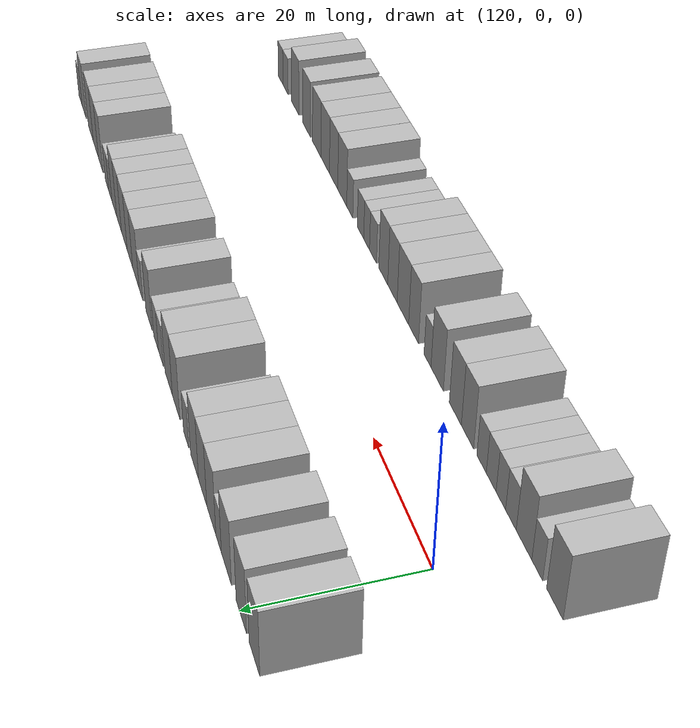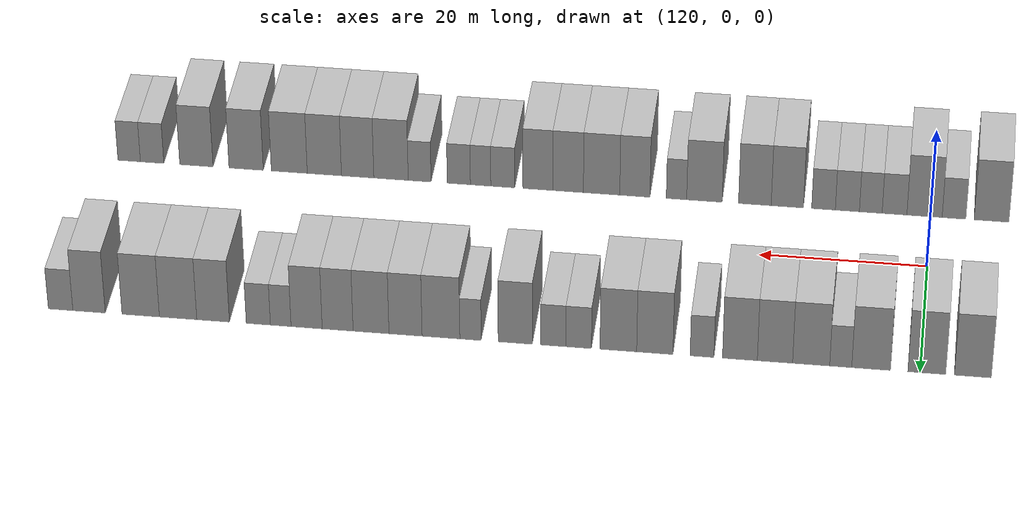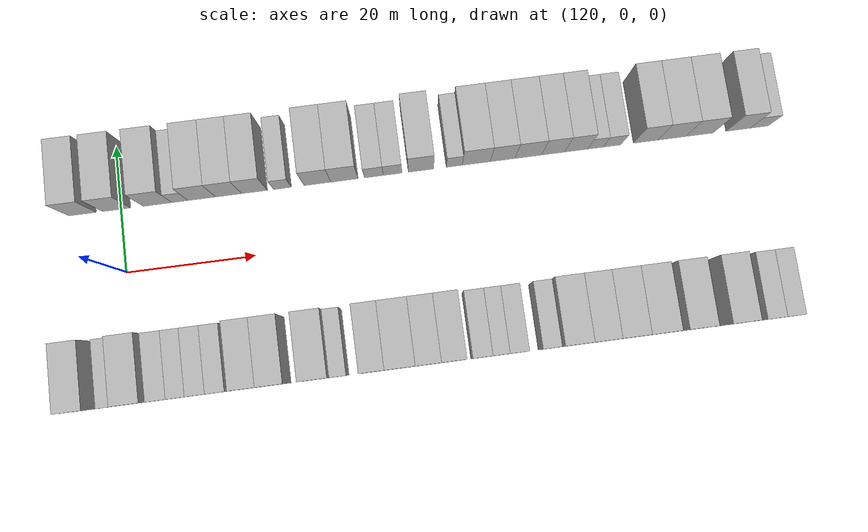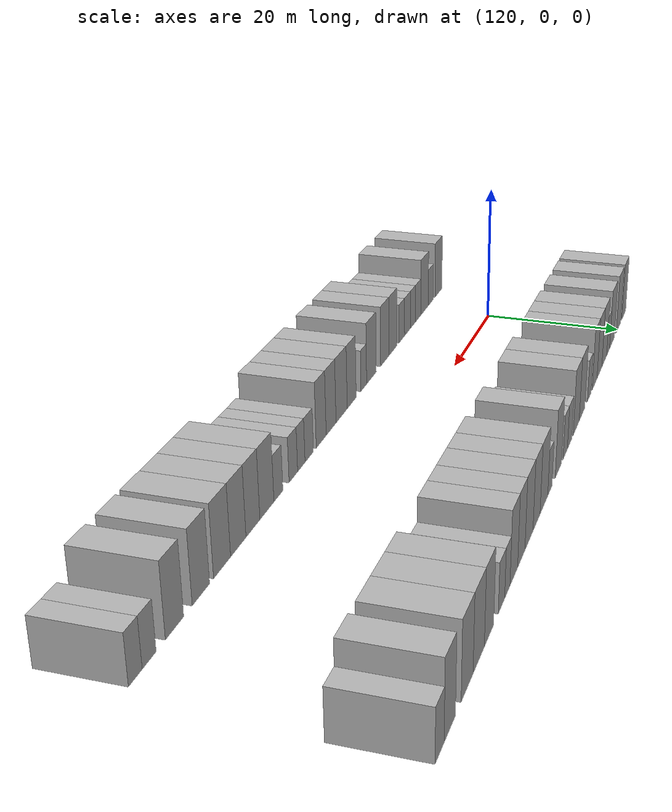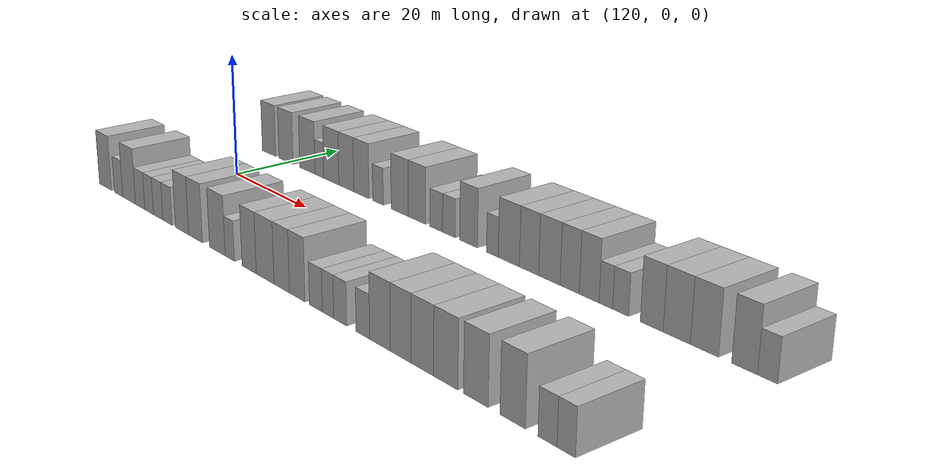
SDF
<sdf version="1.6">
 <world name="default">
  <model name="building_26">
   <static>1</static>
   <pose>113.9571 15.0000 0 0.000000 0.000000 1.570796</pose>
   <link name="link">
    <pose>0 0 4.50 0 0 0</pose>
    <collision name="collision"><geometry><box><size>10.0000 4.2290 9.0000</size></box></geometry></collision>
    <visual name="visual">
     <cast_shadows>0</cast_shadows>
     <geometry><box><size>10.0000 4.2290 9.0000</size></box></geometry>
     <material>
      <script>
       <uri>model://HANNAS_wall/materials/scripts</uri>
       <uri>model://HANNAS_wall/materials/textures</uri>
       <name>vrc/HANNAS_wall</name>
      </script>
     </material>
    </visual>
   </link>
  </model>
  <model name="building_27">
   <static>1</static>
   <pose>119.2484 15.0000 0 0.000000 0.000000 1.570796</pose>
   <link name="link">
    <pose>0 0 4.50 0 0 0</pose>
    <collision name="collision"><geometry><box><size>10.0000 4.3536 9.0000</size></box></geometry></collision>
    <visual name="visual">
     <cast_shadows>0</cast_shadows>
     <geometry><box><size>10.0000 4.3536 9.0000</size></box></geometry>
     <material>
      <script>
       <uri>model://HANNAS_wall/materials/scripts</uri>
       <uri>model://HANNAS_wall/materials/textures</uri>
       <name>vrc/HANNAS_wall</name>
      </script>
     </material>
    </visual>
   </link>
  </model>
  <model name="building_28">
   <static>1</static>
   <pose>125.6580 15.0000 0 0.000000 0.000000 1.570796</pose>
   <link name="link">
    <pose>0 0 4.50 0 0 0</pose>
    <collision name="collision"><geometry><box><size>10.0000 4.4658 9.0000</size></box></geometry></collision>
    <visual name="visual">
     <cast_shadows>0</cast_shadows>
     <geometry><box><size>10.0000 4.4658 9.0000</size></box></geometry>
     <material>
      <script>
       <uri>model://HANNAS_wall/materials/scripts</uri>
       <uri>model://HANNAS_wall/materials/textures</uri>
       <name>vrc/HANNAS_wall</name>
      </script>
     </material>
    </visual>
   </link>
  </model>
  <model name="building_29">
   <static>1</static>
   <pose>129.1652 15.0000 0 0.000000 0.000000 1.570796</pose>
   <link name="link">
    <pose>0 0 3.00 0 0 0</pose>
    <collision name="collision"><geometry><box><size>10.0000 2.5487 6.0000</size></box></geometry></collision>
    <visual name="visual">
     <cast_shadows>0</cast_shadows>
     <geometry><box><size>10.0000 2.5487 6.0000</size></box></geometry>
     <material>
      <script>
       <uri>model://HANNAS_wall/materials/scripts</uri>
       <uri>model://HANNAS_wall/materials/textures</uri>
       <name>vrc/HANNAS_wall</name>
      </script>
     </material>
    </visual>
   </link>
  </model>
  <model name="building_30">
   <static>1</static>
   <pose>132.5843 15.0000 0 0.000000 0.000000 1.570796</pose>
   <link name="link">
    <pose>0 0 4.50 0 0 0</pose>
    <collision name="collision"><geometry><box><size>10.0000 4.2895 9.0000</size></box></geometry></collision>
    <visual name="visual">
     <cast_shadows>0</cast_shadows>
     <geometry><box><size>10.0000 4.2895 9.0000</size></box></geometry>
     <material>
      <script>
       <uri>model://HANNAS_wall/materials/scripts</uri>
       <uri>model://HANNAS_wall/materials/textures</uri>
       <name>vrc/HANNAS_wall</name>
      </script>
     </material>
    </visual>
   </link>
  </model>
  <model name="building_31">
   <static>1</static>
   <pose>136.7707 15.0000 0 0.000000 0.000000 1.570796</pose>
   <link name="link">
    <pose>0 0 4.50 0 0 0</pose>
    <collision name="collision"><geometry><box><size>10.0000 4.0835 9.0000</size></box></geometry></collision>
    <visual name="visual">
     <cast_shadows>0</cast_shadows>
     <geometry><box><size>10.0000 4.0835 9.0000</size></box></geometry>
     <material>
      <script>
       <uri>model://HANNAS_wall/materials/scripts</uri>
       <uri>model://HANNAS_wall/materials/textures</uri>
       <name>vrc/HANNAS_wall</name>
      </script>
     </material>
    </visual>
   </link>
  </model>
  <model name="building_32">
   <static>1</static>
   <pose>140.8305 15.0000 0 0.000000 0.000000 1.570796</pose>
   <link name="link">
    <pose>0 0 4.50 0 0 0</pose>
    <collision name="collision"><geometry><box><size>10.0000 4.0360 9.0000</size></box></geometry></collision>
    <visual name="visual">
     <cast_shadows>0</cast_shadows>
     <geometry><box><size>10.0000 4.0360 9.0000</size></box></geometry>
     <material>
      <script>
       <uri>model://HANNAS_wall/materials/scripts</uri>
       <uri>model://HANNAS_wall/materials/textures</uri>
       <name>vrc/HANNAS_wall</name>
      </script>
     </material>
    </visual>
   </link>
  </model>
  <model name="building_33">
   <static>1</static>
   <pose>145.2298 15.0000 0 0.000000 0.000000 1.570796</pose>
   <link name="link">
    <pose>0 0 3.00 0 0 0</pose>
    <collision name="collision"><geometry><box><size>10.0000 2.7626 6.0000</size></box></geometry></collision>
    <visual name="visual">
     <cast_shadows>0</cast_shadows>
     <geometry><box><size>10.0000 2.7626 6.0000</size></box></geometry>
     <material>
      <script>
       <uri>model://HANNAS_wall/materials/scripts</uri>
       <uri>model://HANNAS_wall/materials/textures</uri>
       <name>vrc/HANNAS_wall</name>
      </script>
     </material>
    </visual>
   </link>
  </model>
  <model name="building_34">
   <static>1</static>
   <pose>150.7208 15.0000 0 0.000000 0.000000 1.570796</pose>
   <link name="link">
    <pose>0 0 4.50 0 0 0</pose>
    <collision name="collision"><geometry><box><size>10.0000 4.2193 9.0000</size></box></geometry></collision>
    <visual name="visual">
     <cast_shadows>0</cast_shadows>
     <geometry><box><size>10.0000 4.2193 9.0000</size></box></geometry>
     <material>
      <script>
       <uri>model://HANNAS_wall/materials/scripts</uri>
       <uri>model://HANNAS_wall/materials/textures</uri>
       <name>vrc/HANNAS_wall</name>
      </script>
     </material>
    </visual>
   </link>
  </model>
  <model name="building_35">
   <static>1</static>
   <pose>154.9682 15.0000 0 0.000000 0.000000 1.570796</pose>
   <link name="link">
    <pose>0 0 4.50 0 0 0</pose>
    <collision name="collision"><geometry><box><size>10.0000 4.2756 9.0000</size></box></geometry></collision>
    <visual name="visual">
     <cast_shadows>0</cast_shadows>
     <geometry><box><size>10.0000 4.2756 9.0000</size></box></geometry>
     <material>
      <script>
       <uri>model://HANNAS_wall/materials/scripts</uri>
       <uri>model://HANNAS_wall/materials/textures</uri>
       <name>vrc/HANNAS_wall</name>
      </script>
     </material>
    </visual>
   </link>
  </model>
  <model name="building_36">
   <static>1</static>
   <pose>159.6041 15.0000 0 0.000000 0.000000 1.570796</pose>
   <link name="link">
    <pose>0 0 3.00 0 0 0</pose>
    <collision name="collision"><geometry><box><size>10.0000 2.9961 6.0000</size></box></geometry></collision>
    <visual name="visual">
     <cast_shadows>0</cast_shadows>
     <geometry><box><size>10.0000 2.9961 6.0000</size></box></geometry>
     <material>
      <script>
       <uri>model://HANNAS_wall/materials/scripts</uri>
       <uri>model://HANNAS_wall/materials/textures</uri>
       <name>vrc/HANNAS_wall</name>
      </script>
     </material>
    </visual>
   </link>
  </model>
  <model name="building_37">
   <static>1</static>
   <pose>162.5634 15.0000 0 0.000000 0.000000 1.570796</pose>
   <link name="link">
    <pose>0 0 3.00 0 0 0</pose>
    <collision name="collision"><geometry><box><size>10.0000 2.9226 6.0000</size></box></geometry></collision>
    <visual name="visual">
     <cast_shadows>0</cast_shadows>
     <geometry><box><size>10.0000 2.9226 6.0000</size></box></geometry>
     <material>
      <script>
       <uri>model://HANNAS_wall/materials/scripts</uri>
       <uri>model://HANNAS_wall/materials/textures</uri>
       <name>vrc/HANNAS_wall</name>
      </script>
     </material>
    </visual>
   </link>
  </model>
  <model name="building_38">
   <static>1</static>
   <pose>167.0217 15.0000 0 0.000000 0.000000 1.570796</pose>
   <link name="link">
    <pose>0 0 4.50 0 0 0</pose>
    <collision name="collision"><geometry><box><size>10.0000 3.9940 9.0000</size></box></geometry></collision>
    <visual name="visual">
     <cast_shadows>0</cast_shadows>
     <geometry><box><size>10.0000 3.9940 9.0000</size></box></geometry>
     <material>
      <script>
       <uri>model://HANNAS_wall/materials/scripts</uri>
       <uri>model://HANNAS_wall/materials/textures</uri>
       <name>vrc/HANNAS_wall</name>
      </script>
     </material>
    </visual>
   </link>
  </model>
  <model name="building_39">
   <static>1</static>
   <pose>172.2708 15.0000 0 0.000000 0.000000 1.570796</pose>
   <link name="link">
    <pose>0 0 3.00 0 0 0</pose>
    <collision name="collision"><geometry><box><size>10.0000 2.5043 6.0000</size></box></geometry></collision>
    <visual name="visual">
     <cast_shadows>0</cast_shadows>
     <geometry><box><size>10.0000 2.5043 6.0000</size></box></geometry>
     <material>
      <script>
       <uri>model://HANNAS_wall/materials/scripts</uri>
       <uri>model://HANNAS_wall/materials/textures</uri>
       <name>vrc/HANNAS_wall</name>
      </script>
     </material>
    </visual>
   </link>
  </model>
  <model name="building_40">
   <static>1</static>
   <pose>175.7442 15.0000 0 0.000000 0.000000 1.570796</pose>
   <link name="link">
    <pose>0 0 4.50 0 0 0</pose>
    <collision name="collision"><geometry><box><size>10.0000 4.4425 9.0000</size></box></geometry></collision>
    <visual name="visual">
     <cast_shadows>0</cast_shadows>
     <geometry><box><size>10.0000 4.4425 9.0000</size></box></geometry>
     <material>
      <script>
       <uri>model://HANNAS_wall/materials/scripts</uri>
       <uri>model://HANNAS_wall/materials/textures</uri>
       <name>vrc/HANNAS_wall</name>
      </script>
     </material>
    </visual>
   </link>
  </model>
  <model name="building_41">
   <static>1</static>
   <pose>179.9159 15.0000 0 0.000000 0.000000 1.570796</pose>
   <link name="link">
    <pose>0 0 4.50 0 0 0</pose>
    <collision name="collision"><geometry><box><size>10.0000 3.9008 9.0000</size></box></geometry></collision>
    <visual name="visual">
     <cast_shadows>0</cast_shadows>
     <geometry><box><size>10.0000 3.9008 9.0000</size></box></geometry>
     <material>
      <script>
       <uri>model://HANNAS_wall/materials/scripts</uri>
       <uri>model://HANNAS_wall/materials/textures</uri>
       <name>vrc/HANNAS_wall</name>
      </script>
     </material>
    </visual>
   </link>
  </model>
  <model name="building_42">
   <static>1</static>
   <pose>183.9827 15.0000 0 0.000000 0.000000 1.570796</pose>
   <link name="link">
    <pose>0 0 4.50 0 0 0</pose>
    <collision name="collision"><geometry><box><size>10.0000 4.2328 9.0000</size></box></geometry></collision>
    <visual name="visual">
     <cast_shadows>0</cast_shadows>
     <geometry><box><size>10.0000 4.2328 9.0000</size></box></geometry>
     <material>
      <script>
       <uri>model://HANNAS_wall/materials/scripts</uri>
       <uri>model://HANNAS_wall/materials/textures</uri>
       <name>vrc/HANNAS_wall</name>
      </script>
     </material>
    </visual>
   </link>
  </model>
  <model name="building_43">
   <static>1</static>
   <pose>187.9259 15.0000 0 0.000000 0.000000 1.570796</pose>
   <link name="link">
    <pose>0 0 4.50 0 0 0</pose>
    <collision name="collision"><geometry><box><size>10.0000 3.6535 9.0000</size></box></geometry></collision>
    <visual name="visual">
     <cast_shadows>0</cast_shadows>
     <geometry><box><size>10.0000 3.6535 9.0000</size></box></geometry>
     <material>
      <script>
       <uri>model://HANNAS_wall/materials/scripts</uri>
       <uri>model://HANNAS_wall/materials/textures</uri>
       <name>vrc/HANNAS_wall</name>
      </script>
     </material>
    </visual>
   </link>
  </model>
  <model name="building_44">
   <static>1</static>
   <pose>191.5947 15.0000 0 0.000000 0.000000 1.570796</pose>
   <link name="link">
    <pose>0 0 4.50 0 0 0</pose>
    <collision name="collision"><geometry><box><size>10.0000 3.6842 9.0000</size></box></geometry></collision>
    <visual name="visual">
     <cast_shadows>0</cast_shadows>
     <geometry><box><size>10.0000 3.6842 9.0000</size></box></geometry>
     <material>
      <script>
       <uri>model://HANNAS_wall/materials/scripts</uri>
       <uri>model://HANNAS_wall/materials/textures</uri>
       <name>vrc/HANNAS_wall</name>
      </script>
     </material>
    </visual>
   </link>
  </model>
  <model name="building_45">
   <static>1</static>
   <pose>194.6603 15.0000 0 0.000000 0.000000 1.570796</pose>
   <link name="link">
    <pose>0 0 3.00 0 0 0</pose>
    <collision name="collision"><geometry><box><size>10.0000 2.4469 6.0000</size></box></geometry></collision>
    <visual name="visual">
     <cast_shadows>0</cast_shadows>
     <geometry><box><size>10.0000 2.4469 6.0000</size></box></geometry>
     <material>
      <script>
       <uri>model://HANNAS_wall/materials/scripts</uri>
       <uri>model://HANNAS_wall/materials/textures</uri>
       <name>vrc/HANNAS_wall</name>
      </script>
     </material>
    </visual>
   </link>
  </model>
  <model name="building_46">
   <static>1</static>
   <pose>197.3124 15.0000 0 0.000000 0.000000 1.570796</pose>
   <link name="link">
    <pose>0 0 3.00 0 0 0</pose>
    <collision name="collision"><geometry><box><size>10.0000 2.8573 6.0000</size></box></geometry></collision>
    <visual name="visual">
     <cast_shadows>0</cast_shadows>
     <geometry><box><size>10.0000 2.8573 6.0000</size></box></geometry>
     <material>
      <script>
       <uri>model://HANNAS_wall/materials/scripts</uri>
       <uri>model://HANNAS_wall/materials/textures</uri>
       <name>vrc/HANNAS_wall</name>
      </script>
     </material>
    </visual>
   </link>
  </model>
  <model name="building_47">
   <static>1</static>
   <pose>202.6811 15.0000 0 0.000000 0.000000 1.570796</pose>
   <link name="link">
    <pose>0 0 4.50 0 0 0</pose>
    <collision name="collision"><geometry><box><size>10.0000 3.8801 9.0000</size></box></geometry></collision>
    <visual name="visual">
     <cast_shadows>0</cast_shadows>
     <geometry><box><size>10.0000 3.8801 9.0000</size></box></geometry>
     <material>
      <script>
       <uri>model://HANNAS_wall/materials/scripts</uri>
       <uri>model://HANNAS_wall/materials/textures</uri>
       <name>vrc/HANNAS_wall</name>
      </script>
     </material>
    </visual>
   </link>
  </model>
  <model name="building_48">
   <static>1</static>
   <pose>206.8475 15.0000 0 0.000000 0.000000 1.570796</pose>
   <link name="link">
    <pose>0 0 4.50 0 0 0</pose>
    <collision name="collision"><geometry><box><size>10.0000 4.4528 9.0000</size></box></geometry></collision>
    <visual name="visual">
     <cast_shadows>0</cast_shadows>
     <geometry><box><size>10.0000 4.4528 9.0000</size></box></geometry>
     <material>
      <script>
       <uri>model://HANNAS_wall/materials/scripts</uri>
       <uri>model://HANNAS_wall/materials/textures</uri>
       <name>vrc/HANNAS_wall</name>
      </script>
     </material>
    </visual>
   </link>
  </model>
  <model name="building_49">
   <static>1</static>
   <pose>211.3017 15.0000 0 0.000000 0.000000 1.570796</pose>
   <link name="link">
    <pose>0 0 4.50 0 0 0</pose>
    <collision name="collision"><geometry><box><size>10.0000 4.4556 9.0000</size></box></geometry></collision>
    <visual name="visual">
     <cast_shadows>0</cast_shadows>
     <geometry><box><size>10.0000 4.4556 9.0000</size></box></geometry>
     <material>
      <script>
       <uri>model://HANNAS_wall/materials/scripts</uri>
       <uri>model://HANNAS_wall/materials/textures</uri>
       <name>vrc/HANNAS_wall</name>
      </script>
     </material>
    </visual>
   </link>
  </model>
  <model name="building_50">
   <static>1</static>
   <pose>217.4664 15.0000 0 0.000000 0.000000 1.570796</pose>
   <link name="link">
    <pose>0 0 4.50 0 0 0</pose>
    <collision name="collision"><geometry><box><size>10.0000 3.8738 9.0000</size></box></geometry></collision>
    <visual name="visual">
     <cast_shadows>0</cast_shadows>
     <geometry><box><size>10.0000 3.8738 9.0000</size></box></geometry>
     <material>
      <script>
       <uri>model://HANNAS_wall/materials/scripts</uri>
       <uri>model://HANNAS_wall/materials/textures</uri>
       <name>vrc/HANNAS_wall</name>
      </script>
     </material>
    </visual>
   </link>
  </model>
  <model name="building_51">
   <static>1</static>
   <pose>220.8694 15.0000 0 0.000000 0.000000 1.570796</pose>
   <link name="link">
    <pose>0 0 3.00 0 0 0</pose>
    <collision name="collision"><geometry><box><size>10.0000 2.9322 6.0000</size></box></geometry></collision>
    <visual name="visual">
     <cast_shadows>0</cast_shadows>
     <geometry><box><size>10.0000 2.9322 6.0000</size></box></geometry>
     <material>
      <script>
       <uri>model://HANNAS_wall/materials/scripts</uri>
       <uri>model://HANNAS_wall/materials/textures</uri>
       <name>vrc/HANNAS_wall</name>
      </script>
     </material>
    </visual>
   </link>
  </model>
  <model name="building_79">
   <static>1</static>
   <pose>112.5888 -15.0000 0 0.000000 0.000000 1.570796</pose>
   <link name="link">
    <pose>0 0 4.50 0 0 0</pose>
    <collision name="collision"><geometry><box><size>10.0000 4.1916 9.0000</size></box></geometry></collision>
    <visual name="visual">
     <cast_shadows>0</cast_shadows>
     <geometry><box><size>10.0000 4.1916 9.0000</size></box></geometry>
     <material>
      <script>
       <uri>model://HANNAS_wall/materials/scripts</uri>
       <uri>model://HANNAS_wall/materials/textures</uri>
       <name>vrc/HANNAS_wall</name>
      </script>
     </material>
    </visual>
   </link>
  </model>
  <model name="building_80">
   <static>1</static>
   <pose>117.1200 -15.0000 0 0.000000 0.000000 1.570796</pose>
   <link name="link">
    <pose>0 0 3.00 0 0 0</pose>
    <collision name="collision"><geometry><box><size>10.0000 2.8707 6.0000</size></box></geometry></collision>
    <visual name="visual">
     <cast_shadows>0</cast_shadows>
     <geometry><box><size>10.0000 2.8707 6.0000</size></box></geometry>
     <material>
      <script>
       <uri>model://HANNAS_wall/materials/scripts</uri>
       <uri>model://HANNAS_wall/materials/textures</uri>
       <name>vrc/HANNAS_wall</name>
      </script>
     </material>
    </visual>
   </link>
  </model>
  <model name="building_81">
   <static>1</static>
   <pose>120.6874 -15.0000 0 0.000000 0.000000 1.570796</pose>
   <link name="link">
    <pose>0 0 4.50 0 0 0</pose>
    <collision name="collision"><geometry><box><size>10.0000 4.2641 9.0000</size></box></geometry></collision>
    <visual name="visual">
     <cast_shadows>0</cast_shadows>
     <geometry><box><size>10.0000 4.2641 9.0000</size></box></geometry>
     <material>
      <script>
       <uri>model://HANNAS_wall/materials/scripts</uri>
       <uri>model://HANNAS_wall/materials/textures</uri>
       <name>vrc/HANNAS_wall</name>
      </script>
     </material>
    </visual>
   </link>
  </model>
  <model name="building_82">
   <static>1</static>
   <pose>124.3186 -15.0000 0 0.000000 0.000000 1.570796</pose>
   <link name="link">
    <pose>0 0 3.00 0 0 0</pose>
    <collision name="collision"><geometry><box><size>10.0000 2.9982 6.0000</size></box></geometry></collision>
    <visual name="visual">
     <cast_shadows>0</cast_shadows>
     <geometry><box><size>10.0000 2.9982 6.0000</size></box></geometry>
     <material>
      <script>
       <uri>model://HANNAS_wall/materials/scripts</uri>
       <uri>model://HANNAS_wall/materials/textures</uri>
       <name>vrc/HANNAS_wall</name>
      </script>
     </material>
    </visual>
   </link>
  </model>
  <model name="building_83">
   <static>1</static>
   <pose>127.1950 -15.0000 0 0.000000 0.000000 1.570796</pose>
   <link name="link">
    <pose>0 0 3.00 0 0 0</pose>
    <collision name="collision"><geometry><box><size>10.0000 2.7545 6.0000</size></box></geometry></collision>
    <visual name="visual">
     <cast_shadows>0</cast_shadows>
     <geometry><box><size>10.0000 2.7545 6.0000</size></box></geometry>
     <material>
      <script>
       <uri>model://HANNAS_wall/materials/scripts</uri>
       <uri>model://HANNAS_wall/materials/textures</uri>
       <name>vrc/HANNAS_wall</name>
      </script>
     </material>
    </visual>
   </link>
  </model>
  <model name="building_84">
   <static>1</static>
   <pose>130.0331 -15.0000 0 0.000000 0.000000 1.570796</pose>
   <link name="link">
    <pose>0 0 3.00 0 0 0</pose>
    <collision name="collision"><geometry><box><size>10.0000 2.9217 6.0000</size></box></geometry></collision>
    <visual name="visual">
     <cast_shadows>0</cast_shadows>
     <geometry><box><size>10.0000 2.9217 6.0000</size></box></geometry>
     <material>
      <script>
       <uri>model://HANNAS_wall/materials/scripts</uri>
       <uri>model://HANNAS_wall/materials/textures</uri>
       <name>vrc/HANNAS_wall</name>
      </script>
     </material>
    </visual>
   </link>
  </model>
  <model name="building_85">
   <static>1</static>
   <pose>132.9336 -15.0000 0 0.000000 0.000000 1.570796</pose>
   <link name="link">
    <pose>0 0 3.00 0 0 0</pose>
    <collision name="collision"><geometry><box><size>10.0000 2.8793 6.0000</size></box></geometry></collision>
    <visual name="visual">
     <cast_shadows>0</cast_shadows>
     <geometry><box><size>10.0000 2.8793 6.0000</size></box></geometry>
     <material>
      <script>
       <uri>model://HANNAS_wall/materials/scripts</uri>
       <uri>model://HANNAS_wall/materials/textures</uri>
       <name>vrc/HANNAS_wall</name>
      </script>
     </material>
    </visual>
   </link>
  </model>
  <model name="building_86">
   <static>1</static>
   <pose>137.3372 -15.0000 0 0.000000 0.000000 1.570796</pose>
   <link name="link">
    <pose>0 0 4.50 0 0 0</pose>
    <collision name="collision"><geometry><box><size>10.0000 3.9281 9.0000</size></box></geometry></collision>
    <visual name="visual">
     <cast_shadows>0</cast_shadows>
     <geometry><box><size>10.0000 3.9281 9.0000</size></box></geometry>
     <material>
      <script>
       <uri>model://HANNAS_wall/materials/scripts</uri>
       <uri>model://HANNAS_wall/materials/textures</uri>
       <name>vrc/HANNAS_wall</name>
      </script>
     </material>
    </visual>
   </link>
  </model>
  <model name="building_87">
   <static>1</static>
   <pose>141.2907 -15.0000 0 0.000000 0.000000 1.570796</pose>
   <link name="link">
    <pose>0 0 4.50 0 0 0</pose>
    <collision name="collision"><geometry><box><size>10.0000 3.9787 9.0000</size></box></geometry></collision>
    <visual name="visual">
     <cast_shadows>0</cast_shadows>
     <geometry><box><size>10.0000 3.9787 9.0000</size></box></geometry>
     <material>
      <script>
       <uri>model://HANNAS_wall/materials/scripts</uri>
       <uri>model://HANNAS_wall/materials/textures</uri>
       <name>vrc/HANNAS_wall</name>
      </script>
     </material>
    </visual>
   </link>
  </model>
  <model name="building_88">
   <static>1</static>
   <pose>147.4485 -15.0000 0 0.000000 0.000000 1.570796</pose>
   <link name="link">
    <pose>0 0 4.50 0 0 0</pose>
    <collision name="collision"><geometry><box><size>10.0000 4.3369 9.0000</size></box></geometry></collision>
    <visual name="visual">
     <cast_shadows>0</cast_shadows>
     <geometry><box><size>10.0000 4.3369 9.0000</size></box></geometry>
     <material>
      <script>
       <uri>model://HANNAS_wall/materials/scripts</uri>
       <uri>model://HANNAS_wall/materials/textures</uri>
       <name>vrc/HANNAS_wall</name>
      </script>
     </material>
    </visual>
   </link>
  </model>
  <model name="building_89">
   <static>1</static>
   <pose>150.8624 -15.0000 0 0.000000 0.000000 1.570796</pose>
   <link name="link">
    <pose>0 0 3.00 0 0 0</pose>
    <collision name="collision"><geometry><box><size>10.0000 2.4909 6.0000</size></box></geometry></collision>
    <visual name="visual">
     <cast_shadows>0</cast_shadows>
     <geometry><box><size>10.0000 2.4909 6.0000</size></box></geometry>
     <material>
      <script>
       <uri>model://HANNAS_wall/materials/scripts</uri>
       <uri>model://HANNAS_wall/materials/textures</uri>
       <name>vrc/HANNAS_wall</name>
      </script>
     </material>
    </visual>
   </link>
  </model>
  <model name="building_90">
   <static>1</static>
   <pose>155.9580 -15.0000 0 0.000000 0.000000 1.570796</pose>
   <link name="link">
    <pose>0 0 4.50 0 0 0</pose>
    <collision name="collision"><geometry><box><size>10.0000 3.7003 9.0000</size></box></geometry></collision>
    <visual name="visual">
     <cast_shadows>0</cast_shadows>
     <geometry><box><size>10.0000 3.7003 9.0000</size></box></geometry>
     <material>
      <script>
       <uri>model://HANNAS_wall/materials/scripts</uri>
       <uri>model://HANNAS_wall/materials/textures</uri>
       <name>vrc/HANNAS_wall</name>
      </script>
     </material>
    </visual>
   </link>
  </model>
  <model name="building_91">
   <static>1</static>
   <pose>160.0416 -15.0000 0 0.000000 0.000000 1.570796</pose>
   <link name="link">
    <pose>0 0 4.50 0 0 0</pose>
    <collision name="collision"><geometry><box><size>10.0000 4.4669 9.0000</size></box></geometry></collision>
    <visual name="visual">
     <cast_shadows>0</cast_shadows>
     <geometry><box><size>10.0000 4.4669 9.0000</size></box></geometry>
     <material>
      <script>
       <uri>model://HANNAS_wall/materials/scripts</uri>
       <uri>model://HANNAS_wall/materials/textures</uri>
       <name>vrc/HANNAS_wall</name>
      </script>
     </material>
    </visual>
   </link>
  </model>
  <model name="building_92">
   <static>1</static>
   <pose>164.1594 -15.0000 0 0.000000 0.000000 1.570796</pose>
   <link name="link">
    <pose>0 0 4.50 0 0 0</pose>
    <collision name="collision"><geometry><box><size>10.0000 3.7687 9.0000</size></box></geometry></collision>
    <visual name="visual">
     <cast_shadows>0</cast_shadows>
     <geometry><box><size>10.0000 3.7687 9.0000</size></box></geometry>
     <material>
      <script>
       <uri>model://HANNAS_wall/materials/scripts</uri>
       <uri>model://HANNAS_wall/materials/textures</uri>
       <name>vrc/HANNAS_wall</name>
      </script>
     </material>
    </visual>
   </link>
  </model>
  <model name="building_93">
   <static>1</static>
   <pose>167.8819 -15.0000 0 0.000000 0.000000 1.570796</pose>
   <link name="link">
    <pose>0 0 4.50 0 0 0</pose>
    <collision name="collision"><geometry><box><size>10.0000 3.6763 9.0000</size></box></geometry></collision>
    <visual name="visual">
     <cast_shadows>0</cast_shadows>
     <geometry><box><size>10.0000 3.6763 9.0000</size></box></geometry>
     <material>
      <script>
       <uri>model://HANNAS_wall/materials/scripts</uri>
       <uri>model://HANNAS_wall/materials/textures</uri>
       <name>vrc/HANNAS_wall</name>
      </script>
     </material>
    </visual>
   </link>
  </model>
  <model name="building_94">
   <static>1</static>
   <pose>172.2020 -15.0000 0 0.000000 0.000000 1.570796</pose>
   <link name="link">
    <pose>0 0 3.00 0 0 0</pose>
    <collision name="collision"><geometry><box><size>10.0000 2.9641 6.0000</size></box></geometry></collision>
    <visual name="visual">
     <cast_shadows>0</cast_shadows>
     <geometry><box><size>10.0000 2.9641 6.0000</size></box></geometry>
     <material>
      <script>
       <uri>model://HANNAS_wall/materials/scripts</uri>
       <uri>model://HANNAS_wall/materials/textures</uri>
       <name>vrc/HANNAS_wall</name>
      </script>
     </material>
    </visual>
   </link>
  </model>
  <model name="building_95">
   <static>1</static>
   <pose>174.9444 -15.0000 0 0.000000 0.000000 1.570796</pose>
   <link name="link">
    <pose>0 0 3.00 0 0 0</pose>
    <collision name="collision"><geometry><box><size>10.0000 2.5207 6.0000</size></box></geometry></collision>
    <visual name="visual">
     <cast_shadows>0</cast_shadows>
     <geometry><box><size>10.0000 2.5207 6.0000</size></box></geometry>
     <material>
      <script>
       <uri>model://HANNAS_wall/materials/scripts</uri>
       <uri>model://HANNAS_wall/materials/textures</uri>
       <name>vrc/HANNAS_wall</name>
      </script>
     </material>
    </visual>
   </link>
  </model>
  <model name="building_96">
   <static>1</static>
   <pose>177.6346 -15.0000 0 0.000000 0.000000 1.570796</pose>
   <link name="link">
    <pose>0 0 3.00 0 0 0</pose>
    <collision name="collision"><geometry><box><size>10.0000 2.8597 6.0000</size></box></geometry></collision>
    <visual name="visual">
     <cast_shadows>0</cast_shadows>
     <geometry><box><size>10.0000 2.8597 6.0000</size></box></geometry>
     <material>
      <script>
       <uri>model://HANNAS_wall/materials/scripts</uri>
       <uri>model://HANNAS_wall/materials/textures</uri>
       <name>vrc/HANNAS_wall</name>
      </script>
     </material>
    </visual>
   </link>
  </model>
  <model name="building_97">
   <static>1</static>
   <pose>182.4790 -15.0000 0 0.000000 0.000000 1.570796</pose>
   <link name="link">
    <pose>0 0 3.00 0 0 0</pose>
    <collision name="collision"><geometry><box><size>10.0000 2.8291 6.0000</size></box></geometry></collision>
    <visual name="visual">
     <cast_shadows>0</cast_shadows>
     <geometry><box><size>10.0000 2.8291 6.0000</size></box></geometry>
     <material>
      <script>
       <uri>model://HANNAS_wall/materials/scripts</uri>
       <uri>model://HANNAS_wall/materials/textures</uri>
       <name>vrc/HANNAS_wall</name>
      </script>
     </material>
    </visual>
   </link>
  </model>
  <model name="building_98">
   <static>1</static>
   <pose>186.0256 -15.0000 0 0.000000 0.000000 1.570796</pose>
   <link name="link">
    <pose>0 0 4.50 0 0 0</pose>
    <collision name="collision"><geometry><box><size>10.0000 4.2640 9.0000</size></box></geometry></collision>
    <visual name="visual">
     <cast_shadows>0</cast_shadows>
     <geometry><box><size>10.0000 4.2640 9.0000</size></box></geometry>
     <material>
      <script>
       <uri>model://HANNAS_wall/materials/scripts</uri>
       <uri>model://HANNAS_wall/materials/textures</uri>
       <name>vrc/HANNAS_wall</name>
      </script>
     </material>
    </visual>
   </link>
  </model>
  <model name="building_99">
   <static>1</static>
   <pose>190.1687 -15.0000 0 0.000000 0.000000 1.570796</pose>
   <link name="link">
    <pose>0 0 4.50 0 0 0</pose>
    <collision name="collision"><geometry><box><size>10.0000 4.0221 9.0000</size></box></geometry></collision>
    <visual name="visual">
     <cast_shadows>0</cast_shadows>
     <geometry><box><size>10.0000 4.0221 9.0000</size></box></geometry>
     <material>
      <script>
       <uri>model://HANNAS_wall/materials/scripts</uri>
       <uri>model://HANNAS_wall/materials/textures</uri>
       <name>vrc/HANNAS_wall</name>
      </script>
     </material>
    </visual>
   </link>
  </model>
  <model name="building_100">
   <static>1</static>
   <pose>194.3071 -15.0000 0 0.000000 0.000000 1.570796</pose>
   <link name="link">
    <pose>0 0 4.50 0 0 0</pose>
    <collision name="collision"><geometry><box><size>10.0000 4.2546 9.0000</size></box></geometry></collision>
    <visual name="visual">
     <cast_shadows>0</cast_shadows>
     <geometry><box><size>10.0000 4.2546 9.0000</size></box></geometry>
     <material>
      <script>
       <uri>model://HANNAS_wall/materials/scripts</uri>
       <uri>model://HANNAS_wall/materials/textures</uri>
       <name>vrc/HANNAS_wall</name>
      </script>
     </material>
    </visual>
   </link>
  </model>
  <model name="building_101">
   <static>1</static>
   <pose>198.6716 -15.0000 0 0.000000 0.000000 1.570796</pose>
   <link name="link">
    <pose>0 0 4.50 0 0 0</pose>
    <collision name="collision"><geometry><box><size>10.0000 4.4745 9.0000</size></box></geometry></collision>
    <visual name="visual">
     <cast_shadows>0</cast_shadows>
     <geometry><box><size>10.0000 4.4745 9.0000</size></box></geometry>
     <material>
      <script>
       <uri>model://HANNAS_wall/materials/scripts</uri>
       <uri>model://HANNAS_wall/materials/textures</uri>
       <name>vrc/HANNAS_wall</name>
      </script>
     </material>
    </visual>
   </link>
  </model>
  <model name="building_102">
   <static>1</static>
   <pose>204.0469 -15.0000 0 0.000000 0.000000 1.570796</pose>
   <link name="link">
    <pose>0 0 4.50 0 0 0</pose>
    <collision name="collision"><geometry><box><size>10.0000 4.2761 9.0000</size></box></geometry></collision>
    <visual name="visual">
     <cast_shadows>0</cast_shadows>
     <geometry><box><size>10.0000 4.2761 9.0000</size></box></geometry>
     <material>
      <script>
       <uri>model://HANNAS_wall/materials/scripts</uri>
       <uri>model://HANNAS_wall/materials/textures</uri>
       <name>vrc/HANNAS_wall</name>
      </script>
     </material>
    </visual>
   </link>
  </model>
  <model name="building_103">
   <static>1</static>
   <pose>210.2671 -15.0000 0 0.000000 0.000000 1.570796</pose>
   <link name="link">
    <pose>0 0 4.50 0 0 0</pose>
    <collision name="collision"><geometry><box><size>10.0000 4.1644 9.0000</size></box></geometry></collision>
    <visual name="visual">
     <cast_shadows>0</cast_shadows>
     <geometry><box><size>10.0000 4.1644 9.0000</size></box></geometry>
     <material>
      <script>
       <uri>model://HANNAS_wall/materials/scripts</uri>
       <uri>model://HANNAS_wall/materials/textures</uri>
       <name>vrc/HANNAS_wall</name>
      </script>
     </material>
    </visual>
   </link>
  </model>
  <model name="building_104">
   <static>1</static>
   <pose>215.8176 -15.0000 0 0.000000 0.000000 1.570796</pose>
   <link name="link">
    <pose>0 0 3.00 0 0 0</pose>
    <collision name="collision"><geometry><box><size>10.0000 2.9366 6.0000</size></box></geometry></collision>
    <visual name="visual">
     <cast_shadows>0</cast_shadows>
     <geometry><box><size>10.0000 2.9366 6.0000</size></box></geometry>
     <material>
      <script>
       <uri>model://HANNAS_wall/materials/scripts</uri>
       <uri>model://HANNAS_wall/materials/textures</uri>
       <name>vrc/HANNAS_wall</name>
      </script>
     </material>
    </visual>
   </link>
  </model>
  <model name="building_105">
   <static>1</static>
   <pose>218.6937 -15.0000 0 0.000000 0.000000 1.570796</pose>
   <link name="link">
    <pose>0 0 3.00 0 0 0</pose>
    <collision name="collision"><geometry><box><size>10.0000 2.8155 6.0000</size></box></geometry></collision>
    <visual name="visual">
     <cast_shadows>0</cast_shadows>
     <geometry><box><size>10.0000 2.8155 6.0000</size></box></geometry>
     <material>
      <script>
       <uri>model://HANNAS_wall/materials/scripts</uri>
       <uri>model://HANNAS_wall/materials/textures</uri>
       <name>vrc/HANNAS_wall</name>
      </script>
     </material>
    </visual>
   </link>
  </model>
 </world>
</sdf>
